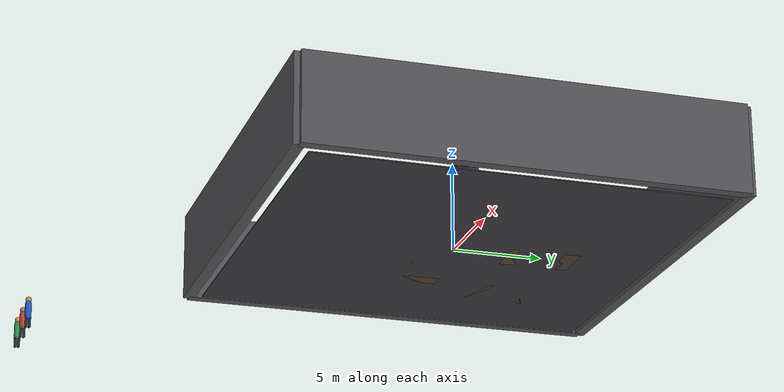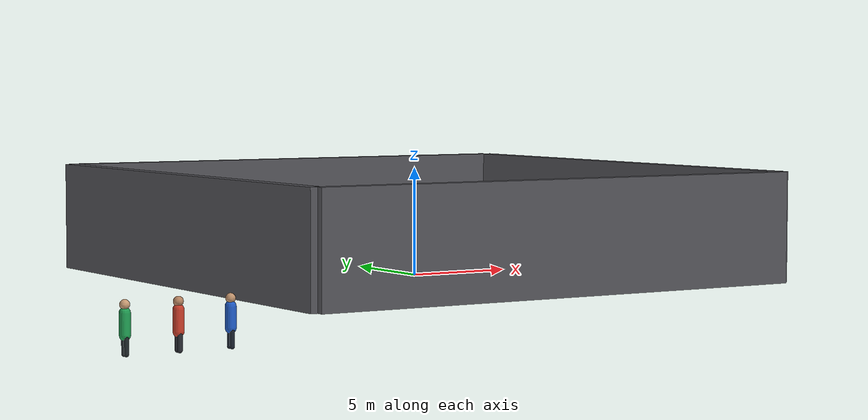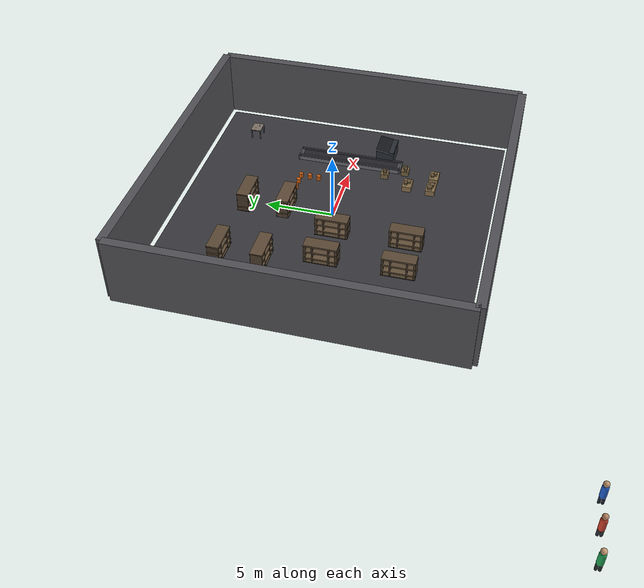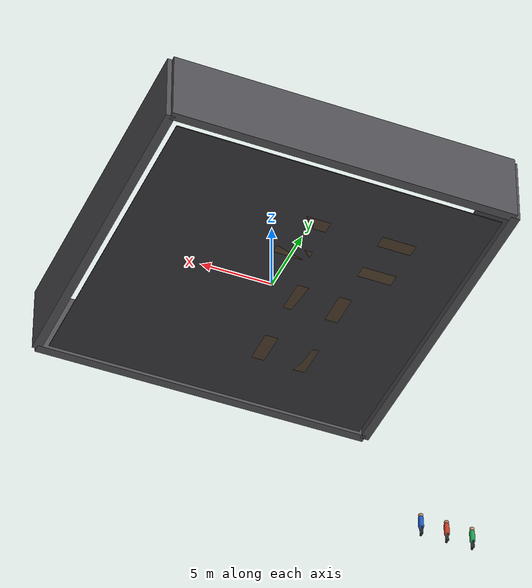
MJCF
<mujoco model="warehouse_with_obstacles">
  <compiler angle="radian" coordinate="local" inertiafromgeom="true"/>
  <option gravity="0 0 -9.8" timestep="0.001" integrator="RK4"/>

  <default>
    <geom contype="1" conaffinity="1" friction="1.1 0.2 0.02" solref="0.02 1" solimp="0.9 0.95 0.001"/>
  </default>

  <worldbody>
    <light name="key" pos="2 2 18" dir="-0.15 -0.15 -1" directional="true" diffuse="0.55 0.55 0.55" specular="0.12 0.12 0.12"/>
    <light name="fill" pos="-8 -10 14" dir="0.45 0.4 -1" directional="true" diffuse="0.25 0.25 0.28" specular="0.04 0.04 0.05"/>

    <body name="floor" pos="0 0 0">
      <geom name="floor_geom" type="box" pos="0 0 -0.03" size="11.35 11.35 0.03" rgba="0.22 0.22 0.24 1" friction="1.3 0.25 0.02"/>
    </body>

    <body name="shipping_container_conveyor_ariac" pos="5.94716 0.254888 0">
      <geom name="conveyor_base" type="box" pos="0.73 0 0.16" size="0.55 3.99 0.16" rgba="0.42 0.43 0.46 1"/>
      <geom name="conveyor_belt" type="box" pos="0.73 0 0.33" size="0.46 3.78 0.02" rgba="0.14 0.14 0.16 1"/>
      <geom name="conveyor_rail_front" type="box" pos="1.191 0 0.32" size="0.0685 3.99 0.15" rgba="0.25 0.25 0.27 1"/>
      <geom name="conveyor_rail_back" type="box" pos="0.268 0 0.32" size="0.0725 3.99 0.15" rgba="0.25 0.25 0.27 1"/>
      <geom name="conveyor_side_left" type="box" pos="0.73 3.99 0.18" size="0.55 0.08 0.18" rgba="0.28 0.28 0.30 1"/>
      <geom name="conveyor_side_right" type="box" pos="0.73 -3.99 0.18" size="0.55 0.08 0.18" rgba="0.28 0.28 0.30 1"/>
    </body>

    <body name="aws_robomaker_warehouse_ClutteringA_01" pos="4.52823 -6.5 0">
      <geom type="box" pos="0 0 0.22" size="0.52 0.34 0.22" rgba="0.54 0.44 0.30 1"/>
      <geom type="box" pos="-0.12 0.06 0.48" size="0.24 0.18 0.16" rgba="0.40 0.33 0.22 1"/>
      <geom type="box" pos="0.16 -0.08 0.53" size="0.18 0.14 0.12" rgba="0.44 0.36 0.24 1"/>
    </body>

    <body name="aws_robomaker_warehouse_ClutteringC_01" pos="6.33701 -4.2 0">
      <geom type="box" pos="0 0 0.2" size="0.35 0.28 0.2" rgba="0.46 0.38 0.25 1"/>
      <geom type="box" pos="0.08 0.02 0.43" size="0.16 0.12 0.14" rgba="0.36 0.30 0.20 1"/>
      <geom type="box" pos="-0.12 -0.04 0.45" size="0.14 0.11 0.12" rgba="0.40 0.33 0.22 1"/>
    </body>

    <body name="aws_robomaker_warehouse_ClutteringA_01_0" pos="4.5893 -4.7 0">
      <geom type="box" pos="0 0 0.22" size="0.52 0.34 0.22" rgba="0.54 0.44 0.30 1"/>
      <geom type="box" pos="0.15 -0.07 0.44" size="0.2 0.16 0.15" rgba="0.42 0.34 0.23 1"/>
      <geom type="box" pos="-0.1 0.12 0.5" size="0.16 0.12 0.11" rgba="0.40 0.32 0.21 1"/>
    </body>

    <body name="aws_robomaker_warehouse_ClutteringD_01" pos="5.5675 -2.73505 0">
      <geom type="box" pos="0 0 0.2" size="0.34 0.28 0.2" rgba="0.48 0.40 0.27 1"/>
      <geom type="box" pos="0.09 0.03 0.42" size="0.15 0.12 0.14" rgba="0.38 0.31 0.21 1"/>
      <geom type="box" pos="-0.1 -0.05 0.46" size="0.12 0.1 0.12" rgba="0.42 0.34 0.23 1"/>
    </body>

    <body name="aws_robomaker_warehouse_ClutteringA_01_1" pos="6.01431 -6.50899 0">
      <geom type="box" pos="0 0 0.22" size="0.52 0.34 0.22" rgba="0.54 0.44 0.30 1"/>
      <geom type="box" pos="-0.08 0.1 0.45" size="0.18 0.14 0.14" rgba="0.40 0.33 0.22 1"/>
      <geom type="box" pos="0.12 -0.08 0.52" size="0.16 0.11 0.1" rgba="0.44 0.36 0.24 1"/>
    </body>

    <body name="warehouse_shelf_e_0" pos="-6 3.5 0">
      <geom type="box" pos="0 0 0.92" size="1.2 0.46 0.06" rgba="0.38 0.30 0.22 1"/>
      <geom type="box" pos="0 0 0.38" size="1.2 0.46 0.05" rgba="0.42 0.34 0.24 1"/>
      <geom type="box" pos="0 0 1.45" size="1.2 0.46 0.06" rgba="0.38 0.30 0.22 1"/>
      <geom type="box" pos="0 0 0.00" size="1.2 0.46 0.06" rgba="0.32 0.26 0.18 1"/>
      <geom type="box" pos="-1.12 0 0.72" size="0.08 0.42 0.72" rgba="0.30 0.24 0.17 1"/>
      <geom type="box" pos="1.12 0 0.72" size="0.08 0.42 0.72" rgba="0.30 0.24 0.17 1"/>
      <geom type="box" pos="-0.58 0 0.72" size="0.05 0.42 0.72" rgba="0.30 0.24 0.17 1"/>
      <geom type="box" pos="0.58 0 0.72" size="0.05 0.42 0.72" rgba="0.30 0.24 0.17 1"/>
    </body>

    <body name="warehouse_shelf_e_1" pos="0 3.5 0">
      <geom type="box" pos="0 0 0.92" size="1.2 0.46 0.06" rgba="0.38 0.30 0.22 1"/>
      <geom type="box" pos="0 0 0.38" size="1.2 0.46 0.05" rgba="0.42 0.34 0.24 1"/>
      <geom type="box" pos="0 0 1.45" size="1.2 0.46 0.06" rgba="0.38 0.30 0.22 1"/>
      <geom type="box" pos="0 0 0.00" size="1.2 0.46 0.06" rgba="0.32 0.26 0.18 1"/>
      <geom type="box" pos="-1.12 0 0.72" size="0.08 0.42 0.72" rgba="0.30 0.24 0.17 1"/>
      <geom type="box" pos="1.12 0 0.72" size="0.08 0.42 0.72" rgba="0.30 0.24 0.17 1"/>
      <geom type="box" pos="-0.58 0 0.72" size="0.05 0.42 0.72" rgba="0.30 0.24 0.17 1"/>
      <geom type="box" pos="0.58 0 0.72" size="0.05 0.42 0.72" rgba="0.30 0.24 0.17 1"/>
    </body>

    <body name="warehouse_shelf_d_0" pos="-6 6.63287 0">
      <geom type="box" pos="0 0 0.92" size="1.2 0.46 0.06" rgba="0.36 0.29 0.21 1"/>
      <geom type="box" pos="0 0 0.38" size="1.2 0.46 0.05" rgba="0.40 0.32 0.23 1"/>
      <geom type="box" pos="0 0 1.45" size="1.2 0.46 0.06" rgba="0.36 0.29 0.21 1"/>
      <geom type="box" pos="0 0 0.00" size="1.2 0.46 0.06" rgba="0.30 0.24 0.17 1"/>
      <geom type="box" pos="-1.12 0 0.72" size="0.08 0.42 0.72" rgba="0.28 0.22 0.16 1"/>
      <geom type="box" pos="1.12 0 0.72" size="0.08 0.42 0.72" rgba="0.28 0.22 0.16 1"/>
      <geom type="box" pos="-0.58 0 0.72" size="0.05 0.42 0.72" rgba="0.28 0.22 0.16 1"/>
      <geom type="box" pos="0.58 0 0.72" size="0.05 0.42 0.72" rgba="0.28 0.22 0.16 1"/>
    </body>

    <body name="warehouse_shelf_d_1" pos="0 6.5 0">
      <geom type="box" pos="0 0 0.92" size="1.2 0.46 0.06" rgba="0.36 0.29 0.21 1"/>
      <geom type="box" pos="0 0 0.38" size="1.2 0.46 0.05" rgba="0.40 0.32 0.23 1"/>
      <geom type="box" pos="0 0 1.45" size="1.2 0.46 0.06" rgba="0.36 0.29 0.21 1"/>
      <geom type="box" pos="0 0 0.00" size="1.2 0.46 0.06" rgba="0.30 0.24 0.17 1"/>
      <geom type="box" pos="-1.12 0 0.72" size="0.08 0.42 0.72" rgba="0.28 0.22 0.16 1"/>
      <geom type="box" pos="1.12 0 0.72" size="0.08 0.42 0.72" rgba="0.28 0.22 0.16 1"/>
      <geom type="box" pos="-0.58 0 0.72" size="0.05 0.42 0.72" rgba="0.28 0.22 0.16 1"/>
      <geom type="box" pos="0.58 0 0.72" size="0.05 0.42 0.72" rgba="0.28 0.22 0.16 1"/>
    </body>

    <body name="warehouse_shelf_d_2" pos="-2 -0.5 0" euler="0 0 1.57">
      <geom type="box" pos="0 0 0.92" size="1.2 0.46 0.06" rgba="0.36 0.29 0.21 1"/>
      <geom type="box" pos="0 0 0.38" size="1.2 0.46 0.05" rgba="0.40 0.32 0.23 1"/>
      <geom type="box" pos="0 0 1.45" size="1.2 0.46 0.06" rgba="0.36 0.29 0.21 1"/>
      <geom type="box" pos="0 0 0.00" size="1.2 0.46 0.06" rgba="0.30 0.24 0.17 1"/>
      <geom type="box" pos="-1.12 0 0.72" size="0.08 0.42 0.72" rgba="0.28 0.22 0.16 1"/>
      <geom type="box" pos="1.12 0 0.72" size="0.08 0.42 0.72" rgba="0.28 0.22 0.16 1"/>
      <geom type="box" pos="-0.58 0 0.72" size="0.05 0.42 0.72" rgba="0.28 0.22 0.16 1"/>
      <geom type="box" pos="0.58 0 0.72" size="0.05 0.42 0.72" rgba="0.28 0.22 0.16 1"/>
    </body>

    <body name="warehouse_shelf_d_3" pos="-5 -0.5 0" euler="0 0 1.57">
      <geom type="box" pos="0 0 0.92" size="1.2 0.46 0.06" rgba="0.36 0.29 0.21 1"/>
      <geom type="box" pos="0 0 0.38" size="1.2 0.46 0.05" rgba="0.40 0.32 0.23 1"/>
      <geom type="box" pos="0 0 1.45" size="1.2 0.46 0.06" rgba="0.36 0.29 0.21 1"/>
      <geom type="box" pos="0 0 0.00" size="1.2 0.46 0.06" rgba="0.30 0.24 0.17 1"/>
      <geom type="box" pos="-1.12 0 0.72" size="0.08 0.42 0.72" rgba="0.28 0.22 0.16 1"/>
      <geom type="box" pos="1.12 0 0.72" size="0.08 0.42 0.72" rgba="0.28 0.22 0.16 1"/>
      <geom type="box" pos="-0.58 0 0.72" size="0.05 0.42 0.72" rgba="0.28 0.22 0.16 1"/>
      <geom type="box" pos="0.58 0 0.72" size="0.05 0.42 0.72" rgba="0.28 0.22 0.16 1"/>
    </body>

    <body name="warehouse_shelf_d_4" pos="-2 -5.88998 0" euler="0 0 1.57">
      <geom type="box" pos="0 0 0.92" size="1.2 0.46 0.06" rgba="0.36 0.29 0.21 1"/>
      <geom type="box" pos="0 0 0.38" size="1.2 0.46 0.05" rgba="0.40 0.32 0.23 1"/>
      <geom type="box" pos="0 0 1.45" size="1.2 0.46 0.06" rgba="0.36 0.29 0.21 1"/>
      <geom type="box" pos="0 0 0.00" size="1.2 0.46 0.06" rgba="0.30 0.24 0.17 1"/>
      <geom type="box" pos="-1.12 0 0.72" size="0.08 0.42 0.72" rgba="0.28 0.22 0.16 1"/>
      <geom type="box" pos="1.12 0 0.72" size="0.08 0.42 0.72" rgba="0.28 0.22 0.16 1"/>
      <geom type="box" pos="-0.58 0 0.72" size="0.05 0.42 0.72" rgba="0.28 0.22 0.16 1"/>
      <geom type="box" pos="0.58 0 0.72" size="0.05 0.42 0.72" rgba="0.28 0.22 0.16 1"/>
    </body>

    <body name="warehouse_shelf_d_5" pos="-5 -5.9682 0" euler="0 0 1.57">
      <geom type="box" pos="0 0 0.92" size="1.2 0.46 0.06" rgba="0.36 0.29 0.21 1"/>
      <geom type="box" pos="0 0 0.38" size="1.2 0.46 0.05" rgba="0.40 0.32 0.23 1"/>
      <geom type="box" pos="0 0 1.45" size="1.2 0.46 0.06" rgba="0.36 0.29 0.21 1"/>
      <geom type="box" pos="0 0 0.00" size="1.2 0.46 0.06" rgba="0.30 0.24 0.17 1"/>
      <geom type="box" pos="-1.12 0 0.72" size="0.08 0.42 0.72" rgba="0.28 0.22 0.16 1"/>
      <geom type="box" pos="1.12 0 0.72" size="0.08 0.42 0.72" rgba="0.28 0.22 0.16 1"/>
      <geom type="box" pos="-0.58 0 0.72" size="0.05 0.42 0.72" rgba="0.28 0.22 0.16 1"/>
      <geom type="box" pos="0.58 0 0.72" size="0.05 0.42 0.72" rgba="0.28 0.22 0.16 1"/>
    </body>

    <body name="warehouse_cone_0" pos="3.9 3.5 0">
      <geom type="cylinder" pos="0 0 0.18" size="0.16 0.18" rgba="0.80 0.38 0.08 1"/>
    </body>
    <body name="warehouse_cone_1" pos="2.5 3.5 0">
      <geom type="cylinder" pos="0 0 0.18" size="0.16 0.18" rgba="0.80 0.38 0.08 1"/>
    </body>
    <body name="warehouse_cone_2" pos="3.9 2.8 0">
      <geom type="cylinder" pos="0 0 0.18" size="0.16 0.18" rgba="0.80 0.38 0.08 1"/>
    </body>
    <body name="warehouse_cone_3" pos="3.9 2.1 0">
      <geom type="cylinder" pos="0 0 0.18" size="0.16 0.18" rgba="0.80 0.38 0.08 1"/>
    </body>
    <body name="warehouse_cone_4" pos="3.2 3.5 0">
      <geom type="cylinder" pos="0 0 0.18" size="0.16 0.18" rgba="0.80 0.38 0.08 1"/>
    </body>

    <body name="warehouse_dumpster" pos="8.07649 -2.37718 0">
      <geom type="box" pos="0 0 0.56" size="0.95 0.68 0.56" rgba="0.16 0.18 0.20 1"/>
      <geom type="box" pos="0 0.0 1.12" size="1.00 0.72 0.05" euler="0.17 0 0" rgba="0.08 0.09 0.10 1"/>
      <geom type="box" pos="0.0 0.58 0.78" size="0.88 0.07 0.20" rgba="0.22 0.24 0.26 1"/>
      <geom type="box" pos="0.0 -0.58 0.78" size="0.88 0.07 0.20" rgba="0.22 0.24 0.26 1"/>
    </body>

    <body name="warehouse_backdrop_left" pos="-12 0 2.5">
      <geom type="box" size="0.32 12 2.5" rgba="0.32 0.32 0.34 1" contype="0" conaffinity="0"/>
    </body>
    <body name="warehouse_backdrop_right" pos="12 0 2.5">
      <geom type="box" size="0.32 12 2.5" rgba="0.32 0.32 0.34 1" contype="0" conaffinity="0"/>
    </body>
    <body name="warehouse_backdrop_far" pos="0 12 2.5">
      <geom type="box" size="12 0.32 2.5" rgba="0.32 0.32 0.34 1" contype="0" conaffinity="0"/>
    </body>
    <body name="warehouse_backdrop_near" pos="0 -12 2.5">
      <geom type="box" size="12 0.32 2.5" rgba="0.32 0.32 0.34 1" contype="0" conaffinity="0"/>
    </body>

    <!-- 工作台：机器人相对角落 -->
    <body name="work_table" pos="8.5 8.5 0">
      <!-- 桌腿 -->
      <geom type="box" pos="-0.45 -0.35 0.375" size="0.04 0.04 0.375" rgba="0.35 0.35 0.38 1"/>
      <geom type="box" pos="0.45 -0.35 0.375" size="0.04 0.04 0.375" rgba="0.35 0.35 0.38 1"/>
      <geom type="box" pos="-0.45 0.35 0.375" size="0.04 0.04 0.375" rgba="0.35 0.35 0.38 1"/>
      <geom type="box" pos="0.45 0.35 0.375" size="0.04 0.04 0.375" rgba="0.35 0.35 0.38 1"/>
      <!-- 桌面 -->
      <geom type="box" pos="0 0 0.77" size="0.50 0.40 0.02" rgba="0.50 0.45 0.40 1"/>

      <!-- 螺丝刀1：红色，固定在桌面上 -->
      <body name="screwdriver_red" pos="-0.2 0.1 0.79">
        <!-- 手柄 -->
        <geom type="capsule" fromto="0 0 0 0.12 0 0" size="0.012" rgba="0.85 0.15 0.15 1"/>
        <!-- 金属杆 -->
        <geom type="capsule" fromto="0.12 0 0 0.18 0 0" size="0.004" rgba="0.65 0.65 0.70 1"/>
      </body>

      <!-- 螺丝刀2：蓝色，固定在桌面上 -->
      <body name="screwdriver_blue" pos="0.15 -0.15 0.79" euler="0 0 0.8">
        <!-- 手柄 -->
        <geom type="capsule" fromto="0 0 0 0.12 0 0" size="0.012" rgba="0.15 0.35 0.85 1"/>
        <!-- 金属杆 -->
        <geom type="capsule" fromto="0.12 0 0 0.18 0 0" size="0.004" rgba="0.65 0.65 0.70 1"/>
      </body>
    </body>

    <!-- 测试用动态行人。默认停在场外，仅由 bridge 的 dynamic-person 参数驱动。 -->
    <body name="dynamic_person" mocap="true" pos="-20 -20 0">
      <geom name="dynamic_person_torso" type="capsule"
            fromto="0 0 0.72 0 0 1.48" size="0.20"
            rgba="0.12 0.36 0.78 1"/>
      <geom name="dynamic_person_head" type="sphere" pos="0 0 1.76"
            size="0.18" rgba="0.76 0.58 0.43 1"/>
      <geom name="dynamic_person_leg_left" type="capsule"
            fromto="0 0.10 0.08 0 0.10 0.72" size="0.09"
            rgba="0.10 0.13 0.18 1"/>
      <geom name="dynamic_person_leg_right" type="capsule"
            fromto="0 -0.10 0.08 0 -0.10 0.72" size="0.09"
            rgba="0.10 0.13 0.18 1"/>
    </body>

    <body name="dynamic_person_2" mocap="true" pos="-22 -20 0">
      <geom name="dynamic_person_2_torso" type="capsule"
            fromto="0 0 0.72 0 0 1.48" size="0.20"
            rgba="0.78 0.24 0.16 1"/>
      <geom name="dynamic_person_2_head" type="sphere" pos="0 0 1.76"
            size="0.18" rgba="0.72 0.52 0.38 1"/>
      <geom name="dynamic_person_2_leg_left" type="capsule"
            fromto="0 0.10 0.08 0 0.10 0.72" size="0.09"
            rgba="0.16 0.17 0.20 1"/>
      <geom name="dynamic_person_2_leg_right" type="capsule"
            fromto="0 -0.10 0.08 0 -0.10 0.72" size="0.09"
            rgba="0.16 0.17 0.20 1"/>
    </body>

    <body name="dynamic_person_3" mocap="true" pos="-24 -20 0">
      <geom name="dynamic_person_3_torso" type="capsule"
            fromto="0 0 0.72 0 0 1.48" size="0.20"
            rgba="0.12 0.62 0.32 1"/>
      <geom name="dynamic_person_3_head" type="sphere" pos="0 0 1.76"
            size="0.18" rgba="0.80 0.62 0.46 1"/>
      <geom name="dynamic_person_3_leg_left" type="capsule"
            fromto="0 0.10 0.08 0 0.10 0.72" size="0.09"
            rgba="0.12 0.15 0.16 1"/>
      <geom name="dynamic_person_3_leg_right" type="capsule"
            fromto="0 -0.10 0.08 0 -0.10 0.72" size="0.09"
            rgba="0.12 0.15 0.16 1"/>
    </body>
  </worldbody>
</mujoco>
